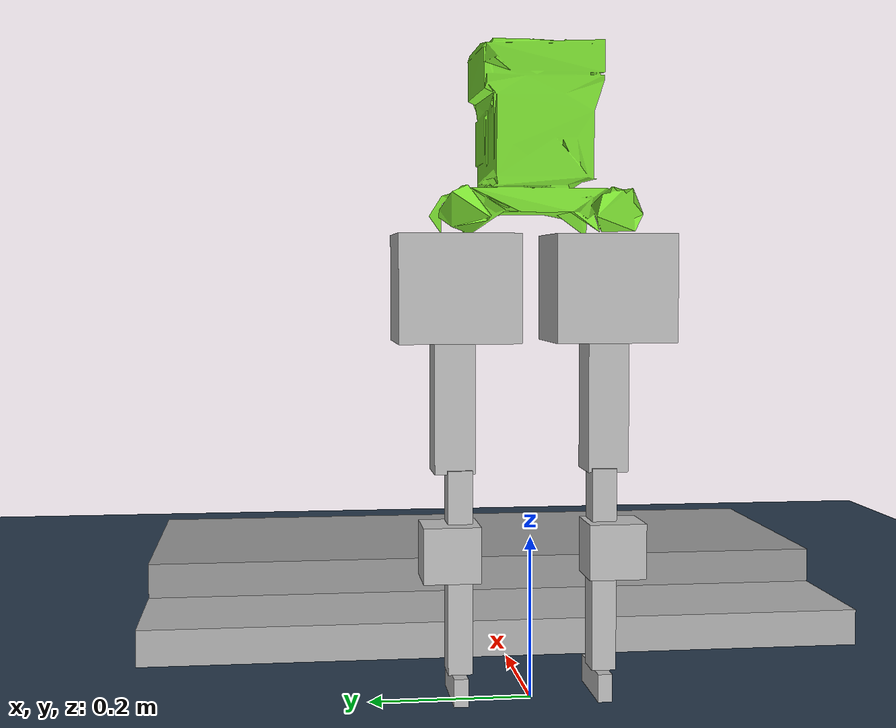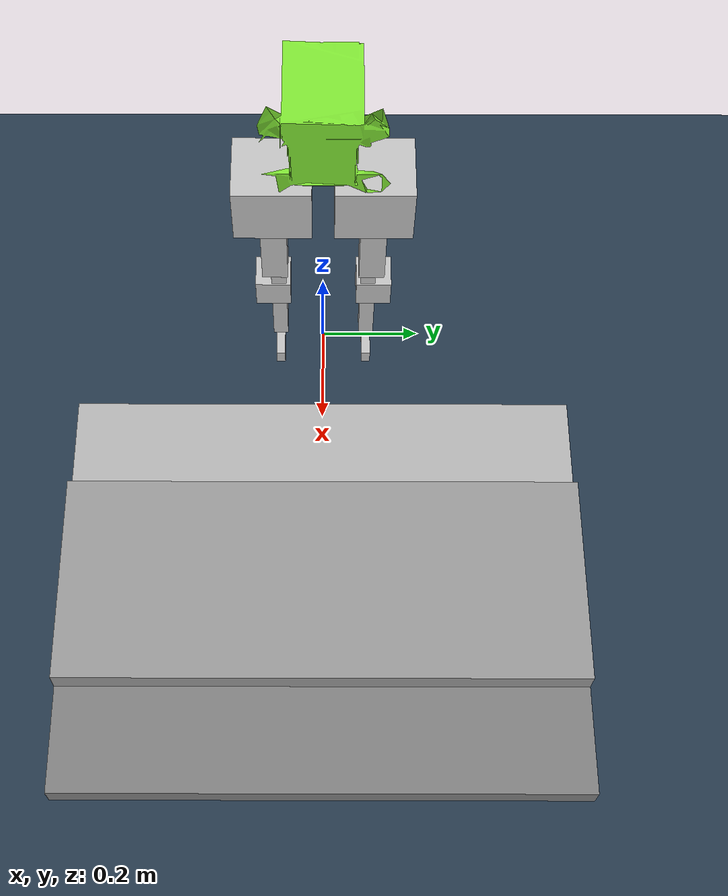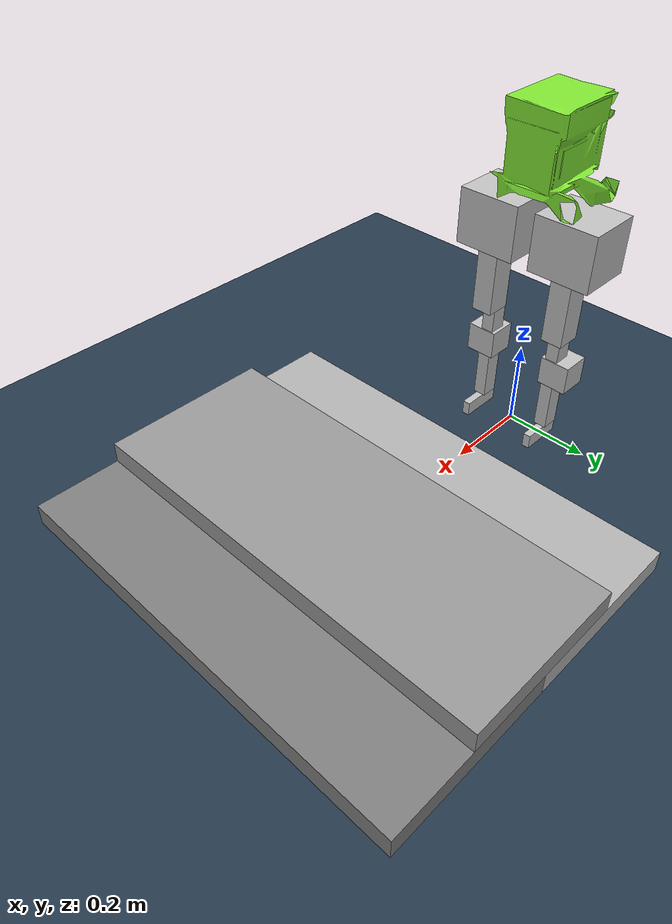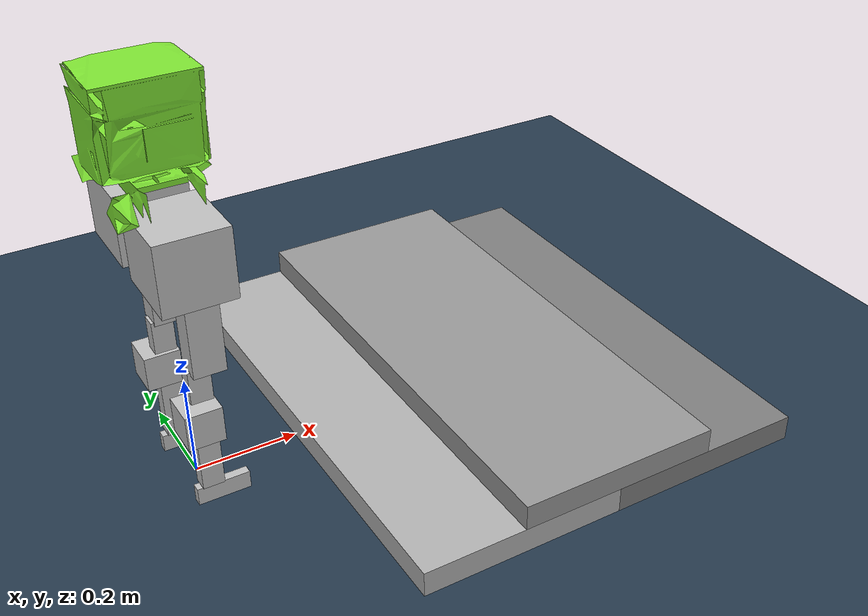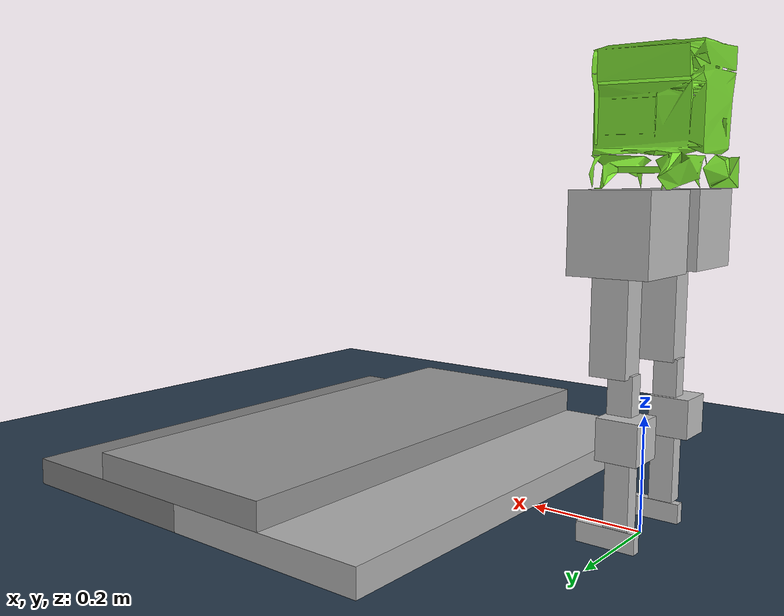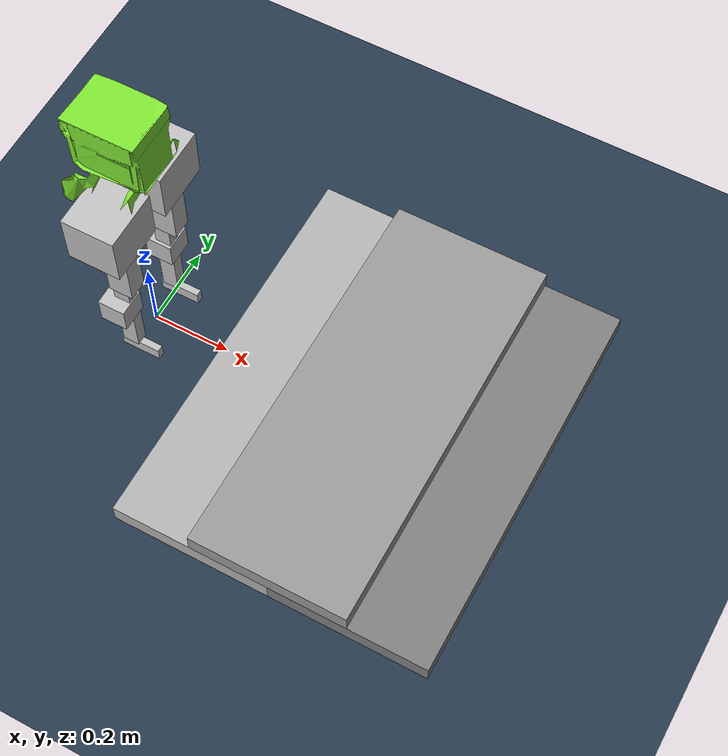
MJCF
<mujoco model="hunter stair scene">
  <include file="pdd_mjx.xml"/>

  <statistic center="0 0 0.1" extent="0.8" meansize="0.04"/>

  <visual>
    <headlight diffuse=".8 .8 .8" ambient=".2 .2 .2" specular="1 1 1"/>
    <rgba force="1 0 0 1"/>
    <global azimuth="120" elevation="-20"/>
    <map force="0.01"/>
    <scale forcewidth="0.3" contactwidth="0.5" contactheight="0.2"/>
    <quality shadowsize="8192"/>
  </visual>

  <asset>
    <texture type="skybox" builtin="gradient" rgb1="1 1 1" rgb2="1 1 1" width="800" height="800"/>
    <texture type="2d" name="groundplane" builtin="checker" mark="edge" rgb1="1 1 1" rgb2="1 1 1" markrgb="0 0 0"
      width="300" height="300"/>
    <material name="groundplane" texture="groundplane" texuniform="true" texrepeat="5 5" reflectance="0"/>
  </asset>

  <worldbody>
    <light pos="0 0 1"/>
    <camera name="front_view" pos="0 -5 1" xyaxes="1 0 0 0 0 1"/>

    <body name="stairs" pos="0.3 0.0 0.0" quat="1 0 0 -1">
      <!-- Ground plane for context -->

      <!-- Step 1 -->
      <geom name= "stairs_1" type="box" size="0.5 0.2 0.025" pos="0 0.1 0.025" rgba="0.7 0.7 0.7 1"/>
      <!-- Step 2 -->
      <geom name= "stairs_2" type="box" size="0.5 0.2 0.025" pos="0 0.3 0.075" rgba="0.6 0.6 0.6 1"/>
      <!-- Step 3 -->
      <geom name= "stairs_3" type="box" size="0.5 0.2 0.025" pos="0 0.5 0.025" rgba="0.5 0.5 0.5 1"/>

      <!-- Step 1 -->
      <!-- Step 2 -->
      <!-- Step 3 -->
      <!-- Step 4 -->
      <!-- Step 5 -->
      <!-- Step 6 -->
      <!-- Step 7 -->
    </body>
  </worldbody>
</mujoco>

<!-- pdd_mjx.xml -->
<mujoco model="pdd_mjx">
  <compiler angle="radian" meshdir="meshes/"/>
  <option iterations="1" ls_iterations="5" timestep="0.004">
    <flag eulerdamp="disable"/>
  </option>

  <size njmax="500" nconmax="100" />

  <visual>
    <quality shadowsize='4096' />
    <map znear='0.05' />
  </visual>

  <default>
    <joint limited='true' />
    <motor ctrllimited='true' />
    <geom condim='4' contype="1" conaffinity="15" solref='0.001 2' friction='0.9 0.2 0.2' />
    <equality solref='0.001 2' />
    <default class='visualgeom'>
      <geom material='visualgeom' condim='1' contype='0' conaffinity='0' />
    </default>
    <default class='visualgeom2'>
      <geom material='visualgeom2' condim='1' contype='0' conaffinity='0' />
    </default>
    <default class='obstacle'>
      <geom material='obstacle' condim='3' contype='1' conaffinity='15' />
    </default>

    <default class='joint_param'>
      <joint damping="1" frictionloss="1" armature="0.01" />
    </default>

    <default class="collision">
        <geom group="3" mass="0" density="0"/>
        <default class="foot">
          <geom type="sphere" size=".001"/>
          <default class="foot1">
            <geom size="0.001" contype="0" conaffinity="0" density="0"/>
          </default>
          <default class="foot2">
            <geom size="0.001"/>
          </default>
        </default>
    </default>

    <default class="hunter">
      <geom contype="0" conaffinity="0"/>
      <position inheritrange="1" dampratio="1"/>
      <joint damping="0.00" frictionloss="0.2"/>
    </default>
  </default>

  <asset>
    <texture type="skybox" builtin="gradient" rgb1="0.3 0.5 0.7" rgb2="0 0 0" width="512"
      height="512" />
    <texture name="texplane" type="2d" builtin="checker" rgb1=".2 .3 .4" rgb2=".1 0.15 0.2"
      width="512" height="512" mark="cross" markrgb=".8 .8 .8" />
    <texture name="texplane2" type="2d" builtin="checker" rgb1="1 0.3137 0.1843"
      rgb2="0.0 0.30196 0.38039"
      width="512" height="512" mark="cross" markrgb=".8 .8 .8" />

    <material name="matplane" reflectance="0." texture="texplane" texrepeat="1 1" texuniform="true" />
    <material name="matplane2" reflectance="0.1" texture="texplane2" texrepeat="1 1"
      texuniform="true" />

    <material name='obstacle' rgba='0.9 0.6 0.2 1' />
    <material name='visualgeom' rgba='0.5 0.9 0.2 1' />
    <material name='visualgeom2' rgba='0.5 0.9 0.2 1' />

    <mesh name="base_link" file="base_link.STL" />
    <mesh name="leg_l1_link" file="leg_l1_link.STL" />
    <mesh name="leg_l2_link" file="leg_l2_link.STL" />
    <mesh name="leg_l3_link" file="leg_l3_link.STL" />
    <mesh name="leg_l4_link" file="leg_l4_link.STL" />
    <mesh name="leg_l5_link" file="leg_l5_link.STL" />
    <mesh name="leg_r1_link" file="leg_r1_link.STL" />
    <mesh name="leg_r2_link" file="leg_r2_link.STL" />
    <mesh name="leg_r3_link" file="leg_r3_link.STL" />
    <mesh name="leg_r4_link" file="leg_r4_link.STL" />
    <mesh name="leg_r5_link" file="leg_r5_link.STL" />

    <hfield name='hf0' nrow='200' ncol='200' size="10 5 0.2 .1" />
  </asset>
  <worldbody>
    <light directional="true" diffuse=".4 .4 .4" specular="0.1 0.1 0.1" pos="0 0 5.0" dir="0 0 -1"
      castshadow="false" />
    <light directional="true" diffuse=".6 .6 .6" specular="0.2 0.2 0.2" pos="0 0 4" dir="0 0 -1" />
    <geom name="ground" type="plane" size="0 0 0.01" pos="0.001 0 0" quat="1 0 0 0" material="matplane"
      condim="3" conaffinity='0' friction="0.6" contype="1"/>

    <body name="base_link" pos="0.0 0.0 0.7">
      <geom type="mesh" mesh="base_link" group="1" class="visualgeom" />

      <inertial pos="-0.010856 -6.8e-05 -0.007128" mass="5.67363"
      	diaginertia="0.0355096 0.0296524 0.0283549" />
      <joint type='slide' axis='1 0 0' limited='false' />
      <joint type='slide' axis='0 1 0' limited='false' />
      <joint type='slide' axis='0 0 1' limited='false' />
      <joint type='ball' limited='false' />
      <camera name="track" pos="1.248 -0.947 0.3" xyaxes="0.628 0.779 -0.000 -0.274 0.221 0.936" mode="trackcom"/>

      <site name='imu' size='0.01' pos='0.0 0 0.0' />

      <geom type="mesh" contype="0" conaffinity="0" group="1" density="0"
        rgba="0.75294 0.75294 0.75294 1" mesh="base_link" />
      <geom type="mesh" rgba="0.75294 0.75294 0.75294 1" mesh="base_link" class="visualgeom" />

      <body name="leg_l1_link" pos="-0.002 0.09 -0.1035">
        <inertial pos="0.002501 5.3e-05 -0.002722" quat="0.472677 0.527005 0.495251 0.503556"
          mass="0.453728" diaginertia="0.000163063 0.000147076 8.18618e-05" />
        <joint name="leg_l1_joint" pos="0 0 0" axis="1 0 0" limited="true" range="-0.2 0.5"
          frictionloss="0.2" />
        <body name="leg_l2_link" pos="0 -0.00016972 -0.0325">
          <inertial pos="-0.000273 0.043826 -0.058639" quat="0.7074 0.0648812 -0.0612384 0.70116"
            mass="0.925998" diaginertia="0.00166463 0.00123897 0.0010754" />
          <joint name="leg_l2_joint" pos="0 0 0" axis="0 0 1" limited="true" range="-0.5 1"
            frictionloss="0.2" />
          <!-- Replace cylinder with box for MJX compatibility -->
          <geom size="0.065 0.065 0.073" pos="0 0.0046 -0.057" quat="0.707388 0.706825 0 0"
            type="box" rgba="0.75294 0.75294 0.75294 1" />
          <body name="leg_l3_link" pos="0 -0.01433 -0.0575">
            <inertial pos="0.003163 -0.022552 -0.027258"
              quat="0.678041 0.0230005 -0.0875592 0.729428"
              mass="1.39047" diaginertia="0.00722081 0.00694653 0.00181065" />
            <joint name="leg_l3_joint" pos="0 0 0" axis="0 1 0" limited="true" range="-1.5 0.2"
              frictionloss="0.2" />
            <geom size="0.03 0.125 0.025" pos="0.015 0.02 -0.1" quat="0.707388 0.706825 0 0"
              type="box" rgba="0.75294 0.75294 0.75294 1" />
            <body name="leg_l4_link" pos="0 0.0145 -0.24">
              <inertial pos="-0.012044 0.006361 -0.093905"
                quat="0.696191 0.0388817 0.0714045 0.713237" mass="0.649518"
                diaginertia="0.00246473 0.00221871 0.000430556" />
              <joint name="leg_l4_joint" pos="0 0 0" axis="0 1 0" limited="true" range="0 1.0"
                frictionloss="0.2" />
              <geom size="0.0205 0.125 0.015" pos="0 0 -0.105" quat="0.707388 0.706825 0 0"
                type="box" rgba="0.75294 0.75294 0.75294 1" />
              <!-- Replace cylinder with box for MJX compatibility -->
              <geom size="0.034 0.034 0.035" pos="-0.011 0.012 -0.079" quat="0.707388 0.706825 0 0"
                type="box" rgba="0.75294 0.75294 0.75294 1" />
              <body name="leg_l5_link" pos="0.005 0 -0.23995">
                <inertial pos="0.012435 0 -0.015511" mass="0.30265"
                  diaginertia="0.0008 0.0008 0.0008" />
                <joint name="leg_l5_joint" pos="0 0 0" axis="0 1 0" limited="true" range="-0.52 0.52"
                  frictionloss="0.2" />
                <geom size="0.05005 0.01725 0.00875" pos="0.01503 0 -0.0102"
                  quat="0.707388 0.706825 0 0" type="box" rgba="0.75294 0.75294 0.75294 1" />
                <body name="leg_l_f1_link" pos="0.06 0 -0.007">
                  <inertial pos="0 0 0" mass="0.01" diaginertia="1e-06 1e-06 1e-06"/>
                </body>
                <body name="leg_l_f2_link" pos="-0.03 0 -0.007">
                  <inertial pos="0 0 0" mass="0.01" diaginertia="1e-06 1e-06 1e-06"/>
                </body>
                <geom name="left_foot1" class="foot1"/>
                <geom name="left_foot2" class="foot2"/>
                <geom name="left_foot" class="foot"/>
                <site name="left_foot" pos="0 0 0" />
              </body>
            </body>
          </body>
        </body>
      </body>

      <body name="leg_r1_link" pos="-0.002 -0.09 -0.1035">
        <inertial pos="0.002501 -5.3e-05 -0.002722" quat="0.503556 0.495251 0.527005 0.472677"
          mass="0.453728" diaginertia="0.000163063 0.000147076 8.18618e-05" />
        <joint name="leg_r1_joint" pos="0 0 0" axis="1 0 0" limited="true" range="-0.5 0.2"
          frictionloss="0.2" />
        <body name="leg_r2_link" pos="0 0.00016972 -0.0325">
          <inertial pos="9e-05 -0.043826 -0.058639" quat="0.7074 0.0648812 -0.0612384 0.70116"
            mass="0.925998" diaginertia="0.00166463 0.00123897 0.0010754" />
          <joint name="leg_r2_joint" pos="0 0 0" axis="0 0 1" limited="true" range="-1 0.5"
            frictionloss="0.2" />
          <!-- Replace cylinder with box for MJX compatibility -->
          <geom size="0.065 0.065 0.073" pos="0 -0.0033 -0.057" quat="0.707388 0.706825 0 0"
            type="box" rgba="0.75294 0.75294 0.75294 1" />
          <body name="leg_r3_link" pos="0 0.01633 -0.0575">
            <inertial pos="0.003311 0.02265 -0.027271" quat="0.734236 -0.0877978 0.023126 0.672795"
              mass="1.38862" diaginertia="0.00722344 0.00694292 0.00180965" />
            <joint name="leg_r3_joint" pos="0 0 0" axis="0 1 0" limited="true" range="-1.5 0.2"
              frictionloss="0.2" />
            <geom size="0.03 0.125 0.025" pos="0.015 -0.02 -0.1" quat="0.707388 0.706825 0 0"
              type="box" rgba="0.75294 0.75294 0.75294 1" />
            <body name="leg_r4_link" pos="0 -0.0145 -0.24">
              <inertial pos="-0.007886 -0.007123 -0.088091"
                quat="0.589012 0.00853647 -0.018288 0.807872" mass="0.61472"
                diaginertia="0.00177827 0.00175932 0.00018341" />
              <joint name="leg_r4_joint" pos="0 0 0" axis="0 1 0" limited="true" range="0 1.0"
                frictionloss="0.2" />
              <geom size="0.0205 0.125 0.015" pos="0 0 -0.105" quat="0.707388 0.706825 0 0"
                type="box" rgba="0.75294 0.75294 0.75294 1" />
              <!-- Replace cylinder with box for MJX compatibility -->
              <geom size="0.034 0.034 0.035" pos="-0.011 -0.012 -0.079" quat="0.707388 0.706825 0 0"
                type="box" rgba="0.75294 0.75294 0.75294 1" />
              <body name="leg_r5_link" pos="0.005 0 -0.23995">
                <inertial pos="0.012435 -0.0005 -0.015511" mass="0.30265"
                  diaginertia="0.0008 0.0008 0.0008" />
                <joint name="leg_r5_joint" pos="0 0 0" axis="0 1 0" limited="true" range="-0.52 0.52"
                  frictionloss="0.2" />
                <geom size="0.05005 0.01725 0.00875" pos="0.01503 0 -0.0102"
                  quat="0.707388 0.706825 0 0" type="box" rgba="0.75294 0.75294 0.75294 1" />
                <body name="leg_r_f1_link" pos="0.06 0 -0.007">
                  <inertial pos="0 0 0" mass="0.01" diaginertia="1e-06 1e-06 1e-06"/>
                </body>
                <body name="leg_r_f2_link" pos="-0.03 0 -0.007">
                  <inertial pos="0 0 0" mass="0.01" diaginertia="1e-06 1e-06 1e-06"/>
                </body>
                <geom name="right_foot1" class="foot1"/>
                <geom name="right_foot2" class="foot2"/>
                <geom name="right_foot" class="foot"/>
                <site name ="right_foot" pos="0 0 0" />
              </body>
            </body>
          </body>
        </body>
      </body>
    </body>
  </worldbody>

  <actuator>
    <position class="hunter" name="leg_l1_joint" joint="leg_l1_joint" forcerange="-36 36" kp="15" kv="1.0"/>
    <position class="hunter" name="leg_l2_joint" joint="leg_l2_joint" forcerange="-36 36" kp="5" kv="0.5"/>
    <position class="hunter" name="leg_l3_joint" joint="leg_l3_joint" forcerange="-60 60" kp="15" kv="1.5"/>
    <position class="hunter" name="leg_l4_joint" joint="leg_l4_joint" forcerange="-60 60" kp="25" kv="2.5"/>
    <position class="hunter" name="leg_l5_joint" joint="leg_l5_joint" forcerange="-36 36" kp="5" kv="0.1"/>

    <position class="hunter" name="leg_r1_joint" joint="leg_r1_joint" forcerange="-36 36" kp="15" kv="1.0"/>
    <position class="hunter" name="leg_r2_joint" joint="leg_r2_joint" forcerange="-36 36" kp="5" kv="0.5"/>
    <position class="hunter" name="leg_r3_joint" joint="leg_r3_joint" forcerange="-60 60" kp="15" kv="1.5"/>
    <position class="hunter" name="leg_r4_joint" joint="leg_r4_joint" forcerange="-60 60" kp="25" kv="2.5"/>
    <position class="hunter" name="leg_r5_joint" joint="leg_r5_joint" forcerange="-36 36" kp="5" kv="0.1"/>
  </actuator>

  <sensor>
    <actuatorpos name='leg_l1_joint_p' actuator='leg_l1_joint' user='13' />
    <actuatorpos name='leg_l2_joint_p' actuator='leg_l2_joint' user='13' />
    <actuatorpos name='leg_l3_joint_p' actuator='leg_l3_joint' user='13' />
    <actuatorpos name='leg_l4_joint_p' actuator='leg_l4_joint' user='13' />
    <actuatorpos name='leg_l5_joint_p' actuator='leg_l5_joint' user='13' />
    <actuatorpos name='leg_r1_joint_p' actuator='leg_r1_joint' user='13' />
    <actuatorpos name='leg_r2_joint_p' actuator='leg_r2_joint' user='13' />
    <actuatorpos name='leg_r3_joint_p' actuator='leg_r3_joint' user='13' />
    <actuatorpos name='leg_r4_joint_p' actuator='leg_r4_joint' user='13' />
    <actuatorpos name='leg_r5_joint_p' actuator='leg_r5_joint' user='13' />

    <actuatorvel name='leg_l1_joint_v' actuator='leg_l1_joint' user='13' />
    <actuatorvel name='leg_l2_joint_v' actuator='leg_l2_joint' user='13' />
    <actuatorvel name='leg_l3_joint_v' actuator='leg_l3_joint' user='13' />
    <actuatorvel name='leg_l4_joint_v' actuator='leg_l4_joint' user='13' />
    <actuatorvel name='leg_l5_joint_v' actuator='leg_l5_joint' user='13' />
    <actuatorvel name='leg_r1_joint_v' actuator='leg_r1_joint' user='13' />
    <actuatorvel name='leg_r2_joint_v' actuator='leg_r2_joint' user='13' />
    <actuatorvel name='leg_r3_joint_v' actuator='leg_r3_joint' user='13' />
    <actuatorvel name='leg_r4_joint_v' actuator='leg_r4_joint' user='13' />
    <actuatorvel name='leg_r5_joint_v' actuator='leg_r5_joint' user='13' />

    <actuatorfrc name='leg_l1_joint_f' actuator='leg_l1_joint' user='13' />
    <actuatorfrc name='leg_l2_joint_f' actuator='leg_l2_joint' user='13' />
    <actuatorfrc name='leg_l3_joint_f' actuator='leg_l3_joint' user='13' />
    <actuatorfrc name='leg_l4_joint_f' actuator='leg_l4_joint' user='13' />
    <actuatorfrc name='leg_l5_joint_f' actuator='leg_l5_joint' user='13' />
    <actuatorfrc name='leg_r1_joint_f' actuator='leg_r1_joint' user='13' />
    <actuatorfrc name='leg_r2_joint_f' actuator='leg_r2_joint' user='13' />
    <actuatorfrc name='leg_r3_joint_f' actuator='leg_r3_joint' user='13' />
    <actuatorfrc name='leg_r4_joint_f' actuator='leg_r4_joint' user='13' />
    <actuatorfrc name='leg_r5_joint_f' actuator='leg_r5_joint' user='13' />

    <gyro site="imu" name="gyro"/>
    <velocimeter site="imu" name="local_linvel"/>
    <accelerometer site="imu" name="accelerometer"/>
    <framepos objtype="site" objname="imu" name="position"/>
    <framezaxis objtype="site" objname="imu" name="upvector"/>
    <framexaxis objtype="site" objname="imu" name="forwardvector"/>
    <framelinvel objtype="site" objname="imu" name="global_linvel"/>
    <frameangvel objtype="site" objname="imu" name="global_angvel"/>
    <framequat objtype="site" objname="imu" name="orientation"/>

    <framelinvel objtype="site" objname="right_foot" name="right_foot_global_linvel"/>
    <framelinvel objtype="site" objname="left_foot" name="left_foot_global_linvel"/>

  </sensor>
</mujoco>
